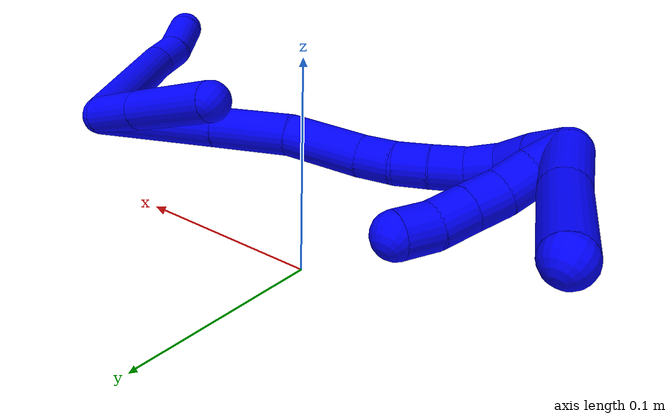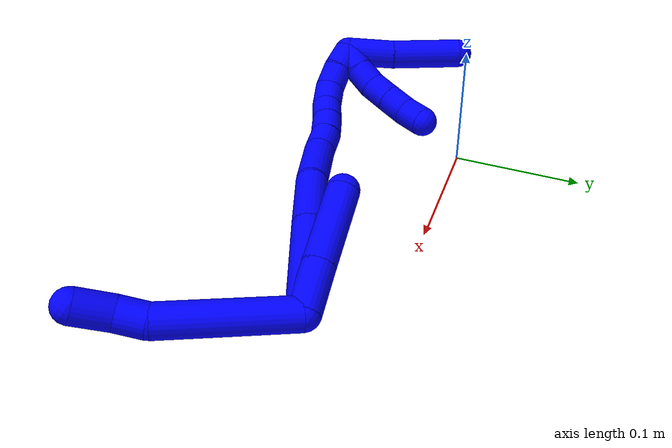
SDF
<sdf version="1.7">
 <world name="default">
  <model name="1">
   <static>0</static>
   <link name="1">
    <collision name="collision-cylinder-e_1_2_8">
     <pose>0.022388 -0.01796 0.040453 0.417834 0.468298 0.101053</pose>
     <geometry><cylinder><radius>0.0125</radius><length>0.099202</length></cylinder></geometry>
     <surface>
      <friction><ode><mu>1.16</mu><mu2>1.16</mu2><slip1>0</slip1><slip2>0</slip2></ode></friction>
      <contact><ode><kp>1e+06</kp><kd>1</kd><max_vel>0</max_vel><min_depth>0.001</min_depth></ode></contact>
     </surface>
    </collision>
    <visual name="visual-cylinder-e_1_2_8">
     <pose>0.022388 -0.01796 0.040453 0.417834 0.468298 0.101053</pose>
     <geometry><cylinder><radius>0.0125</radius><length>0.099202</length></cylinder></geometry>
     <material><ambient>0 0 1 1</ambient></material>
    </visual>
    <collision name="collision-cylinder-e_2_8_9">
     <pose>0.046967 -0.039414 0.091392 0.321621 0.195643 0.031834</pose>
     <geometry><cylinder><radius>0.0125</radius><length>0.022534</length></cylinder></geometry>
     <surface>
      <friction><ode><mu>1.16</mu><mu2>1.16</mu2><slip1>0</slip1><slip2>0</slip2></ode></friction>
      <contact><ode><kp>1e+06</kp><kd>1</kd><max_vel>0</max_vel><min_depth>0.001</min_depth></ode></contact>
     </surface>
    </collision>
    <visual name="visual-cylinder-e_2_8_9">
     <pose>0.046967 -0.039414 0.091392 0.321621 0.195643 0.031834</pose>
     <geometry><cylinder><radius>0.0125</radius><length>0.022534</length></cylinder></geometry>
     <material><ambient>0 0 1 1</ambient></material>
    </visual>
    <collision name="collision-cylinder-e_3_9_6">
     <pose>0.054947 -0.043831 0.114735 0.071644 0.422122 0.015356</pose>
     <geometry><cylinder><radius>0.0125</radius><length>0.028264</length></cylinder></geometry>
     <surface>
      <friction><ode><mu>1.16</mu><mu2>1.16</mu2><slip1>0</slip1><slip2>0</slip2></ode></friction>
      <contact><ode><kp>1e+06</kp><kd>1</kd><max_vel>0</max_vel><min_depth>0.001</min_depth></ode></contact>
     </surface>
    </collision>
    <visual name="visual-cylinder-e_3_9_6">
     <pose>0.054947 -0.043831 0.114735 0.071644 0.422122 0.015356</pose>
     <geometry><cylinder><radius>0.0125</radius><length>0.028264</length></cylinder></geometry>
     <material><ambient>0 0 1 1</ambient></material>
    </visual>
    <collision name="collision-cylinder-e_1_2_10">
     <pose>-0.017951 0.003505 0.003564 -0.777013 -1.29923 0.602875</pose>
     <geometry><cylinder><radius>0.0125</radius><length>0.037269</length></cylinder></geometry>
     <surface>
      <friction><ode><mu>1.16</mu><mu2>1.16</mu2><slip1>0</slip1><slip2>0</slip2></ode></friction>
      <contact><ode><kp>1e+06</kp><kd>1</kd><max_vel>0</max_vel><min_depth>0.001</min_depth></ode></contact>
     </surface>
    </collision>
    <visual name="visual-cylinder-e_1_2_10">
     <pose>-0.017951 0.003505 0.003564 -0.777013 -1.29923 0.602875</pose>
     <geometry><cylinder><radius>0.0125</radius><length>0.037269</length></cylinder></geometry>
     <material><ambient>0 0 1 1</ambient></material>
    </visual>
    <collision name="collision-cylinder-e_2_10_5">
     <pose>-0.06616 0.013038 0.012782 -0.817412 -1.30413 0.638671</pose>
     <geometry><cylinder><radius>0.0125</radius><length>0.062731</length></cylinder></geometry>
     <surface>
      <friction><ode><mu>1.16</mu><mu2>1.16</mu2><slip1>0</slip1><slip2>0</slip2></ode></friction>
      <contact><ode><kp>1e+06</kp><kd>1</kd><max_vel>0</max_vel><min_depth>0.001</min_depth></ode></contact>
     </surface>
    </collision>
    <visual name="visual-cylinder-e_2_10_5">
     <pose>-0.06616 0.013038 0.012782 -0.817412 -1.30413 0.638671</pose>
     <geometry><cylinder><radius>0.0125</radius><length>0.062731</length></cylinder></geometry>
     <material><ambient>0 0 1 1</ambient></material>
    </visual>
    <collision name="collision-cylinder-e_1_2_11">
     <pose>-0.03948 -0.006761 0.012006 0.512902 -1.235 -0.368218</pose>
     <geometry><cylinder><radius>0.0125</radius><length>0.083632</length></cylinder></geometry>
     <surface>
      <friction><ode><mu>1.16</mu><mu2>1.16</mu2><slip1>0</slip1><slip2>0</slip2></ode></friction>
      <contact><ode><kp>1e+06</kp><kd>1</kd><max_vel>0</max_vel><min_depth>0.001</min_depth></ode></contact>
     </surface>
    </collision>
    <visual name="visual-cylinder-e_1_2_11">
     <pose>-0.03948 -0.006761 0.012006 0.512902 -1.235 -0.368218</pose>
     <geometry><cylinder><radius>0.0125</radius><length>0.083632</length></cylinder></geometry>
     <material><ambient>0 0 1 1</ambient></material>
    </visual>
    <collision name="collision-cylinder-e_2_11_12">
     <pose>-0.102085 -0.017221 0.030748 0.502108 -1.24996 -0.365917</pose>
     <geometry><cylinder><radius>0.0125</radius><length>0.048736</length></cylinder></geometry>
     <surface>
      <friction><ode><mu>1.16</mu><mu2>1.16</mu2><slip1>0</slip1><slip2>0</slip2></ode></friction>
      <contact><ode><kp>1e+06</kp><kd>1</kd><max_vel>0</max_vel><min_depth>0.001</min_depth></ode></contact>
     </surface>
    </collision>
    <visual name="visual-cylinder-e_2_11_12">
     <pose>-0.102085 -0.017221 0.030748 0.502108 -1.24996 -0.365917</pose>
     <geometry><cylinder><radius>0.0125</radius><length>0.048736</length></cylinder></geometry>
     <material><ambient>0 0 1 1</ambient></material>
    </visual>
    <collision name="collision-cylinder-e_3_12_13">
     <pose>-0.147423 -0.026516 0.040568 1.06713 -1.29071 -0.836963</pose>
     <geometry><cylinder><radius>0.0125</radius><length>0.046228</length></cylinder></geometry>
     <surface>
      <friction><ode><mu>1.16</mu><mu2>1.16</mu2><slip1>0</slip1><slip2>0</slip2></ode></friction>
      <contact><ode><kp>1e+06</kp><kd>1</kd><max_vel>0</max_vel><min_depth>0.001</min_depth></ode></contact>
     </surface>
    </collision>
    <visual name="visual-cylinder-e_3_12_13">
     <pose>-0.147423 -0.026516 0.040568 1.06713 -1.29071 -0.836963</pose>
     <geometry><cylinder><radius>0.0125</radius><length>0.046228</length></cylinder></geometry>
     <material><ambient>0 0 1 1</ambient></material>
    </visual>
    <collision name="collision-cylinder-e_4_13_14">
     <pose>-0.18026 -0.032802 0.044715 0.575665 -1.4521 -0.514061</pose>
     <geometry><cylinder><radius>0.0125</radius><length>0.021398</length></cylinder></geometry>
     <surface>
      <friction><ode><mu>1.16</mu><mu2>1.16</mu2><slip1>0</slip1><slip2>0</slip2></ode></friction>
      <contact><ode><kp>1e+06</kp><kd>1</kd><max_vel>0</max_vel><min_depth>0.001</min_depth></ode></contact>
     </surface>
    </collision>
    <visual name="visual-cylinder-e_4_13_14">
     <pose>-0.18026 -0.032802 0.044715 0.575665 -1.4521 -0.514061</pose>
     <geometry><cylinder><radius>0.0125</radius><length>0.021398</length></cylinder></geometry>
     <material><ambient>0 0 1 1</ambient></material>
    </visual>
    <collision name="collision-cylinder-e_5_14_15">
     <pose>-0.200438 -0.034656 0.0485 0.404217 -1.27029 -0.299775</pose>
     <geometry><cylinder><radius>0.0125</radius><length>0.020003</length></cylinder></geometry>
     <surface>
      <friction><ode><mu>1.16</mu><mu2>1.16</mu2><slip1>0</slip1><slip2>0</slip2></ode></friction>
      <contact><ode><kp>1e+06</kp><kd>1</kd><max_vel>0</max_vel><min_depth>0.001</min_depth></ode></contact>
     </surface>
    </collision>
    <visual name="visual-cylinder-e_5_14_15">
     <pose>-0.200438 -0.034656 0.0485 0.404217 -1.27029 -0.299775</pose>
     <geometry><cylinder><radius>0.0125</radius><length>0.020003</length></cylinder></geometry>
     <material><ambient>0 0 1 1</ambient></material>
    </visual>
    <collision name="collision-cylinder-e_6_15_16">
     <pose>-0.219288 -0.03739 0.054556 0.439902 -1.19336 -0.301426</pose>
     <geometry><cylinder><radius>0.0125</radius><length>0.020002</length></cylinder></geometry>
     <surface>
      <friction><ode><mu>1.16</mu><mu2>1.16</mu2><slip1>0</slip1><slip2>0</slip2></ode></friction>
      <contact><ode><kp>1e+06</kp><kd>1</kd><max_vel>0</max_vel><min_depth>0.001</min_depth></ode></contact>
     </surface>
    </collision>
    <visual name="visual-cylinder-e_6_15_16">
     <pose>-0.219288 -0.03739 0.054556 0.439902 -1.19336 -0.301426</pose>
     <geometry><cylinder><radius>0.0125</radius><length>0.020002</length></cylinder></geometry>
     <material><ambient>0 0 1 1</ambient></material>
    </visual>
    <collision name="collision-cylinder-e_7_16_17">
     <pose>-0.237984 -0.03756 0.061006 -0.422279 -1.22228 0.298106</pose>
     <geometry><cylinder><radius>0.0125</radius><length>0.02</length></cylinder></geometry>
     <surface>
      <friction><ode><mu>1.16</mu><mu2>1.16</mu2><slip1>0</slip1><slip2>0</slip2></ode></friction>
      <contact><ode><kp>1e+06</kp><kd>1</kd><max_vel>0</max_vel><min_depth>0.001</min_depth></ode></contact>
     </surface>
    </collision>
    <visual name="visual-cylinder-e_7_16_17">
     <pose>-0.237984 -0.03756 0.061006 -0.422279 -1.22228 0.298106</pose>
     <geometry><cylinder><radius>0.0125</radius><length>0.02</length></cylinder></geometry>
     <material><ambient>0 0 1 1</ambient></material>
    </visual>
    <collision name="collision-cylinder-e_8_17_18">
     <pose>-0.256085 -0.0316 0.065988 -1.18233 -1.05557 0.745968</pose>
     <geometry><cylinder><radius>0.0125</radius><length>0.020001</length></cylinder></geometry>
     <surface>
      <friction><ode><mu>1.16</mu><mu2>1.16</mu2><slip1>0</slip1><slip2>0</slip2></ode></friction>
      <contact><ode><kp>1e+06</kp><kd>1</kd><max_vel>0</max_vel><min_depth>0.001</min_depth></ode></contact>
     </surface>
    </collision>
    <visual name="visual-cylinder-e_8_17_18">
     <pose>-0.256085 -0.0316 0.065988 -1.18233 -1.05557 0.745968</pose>
     <geometry><cylinder><radius>0.0125</radius><length>0.020001</length></cylinder></geometry>
     <material><ambient>0 0 1 1</ambient></material>
    </visual>
    <collision name="collision-cylinder-e_9_18_1">
     <pose>-0.273803 -0.022727 0.068186 -1.49399 -1.12355 1.05543</pose>
     <geometry><cylinder><radius>0.0125</radius><length>0.02</length></cylinder></geometry>
     <surface>
      <friction><ode><mu>1.16</mu><mu2>1.16</mu2><slip1>0</slip1><slip2>0</slip2></ode></friction>
      <contact><ode><kp>1e+06</kp><kd>1</kd><max_vel>0</max_vel><min_depth>0.001</min_depth></ode></contact>
     </surface>
    </collision>
    <visual name="visual-cylinder-e_9_18_1">
     <pose>-0.273803 -0.022727 0.068186 -1.49399 -1.12355 1.05543</pose>
     <geometry><cylinder><radius>0.0125</radius><length>0.02</length></cylinder></geometry>
     <material><ambient>0 0 1 1</ambient></material>
    </visual>
    <collision name="collision-cylinder-e_1_1_19">
     <pose>-0.2771 -0.018805 0.060324 3.09408 0.608884 2.99064</pose>
     <geometry><cylinder><radius>0.0125</radius><length>0.02</length></cylinder></geometry>
     <surface>
      <friction><ode><mu>1.16</mu><mu2>1.16</mu2><slip1>0</slip1><slip2>0</slip2></ode></friction>
      <contact><ode><kp>1e+06</kp><kd>1</kd><max_vel>0</max_vel><min_depth>0.001</min_depth></ode></contact>
     </surface>
    </collision>
    <visual name="visual-cylinder-e_1_1_19">
     <pose>-0.2771 -0.018805 0.060324 3.09408 0.608884 2.99064</pose>
     <geometry><cylinder><radius>0.0125</radius><length>0.02</length></cylinder></geometry>
     <material><ambient>0 0 1 1</ambient></material>
    </visual>
    <collision name="collision-cylinder-e_2_19_20">
     <pose>-0.266972 -0.018745 0.043166 -3.09148 0.456536 -2.92669</pose>
     <geometry><cylinder><radius>0.0125</radius><length>0.02</length></cylinder></geometry>
     <surface>
      <friction><ode><mu>1.16</mu><mu2>1.16</mu2><slip1>0</slip1><slip2>0</slip2></ode></friction>
      <contact><ode><kp>1e+06</kp><kd>1</kd><max_vel>0</max_vel><min_depth>0.001</min_depth></ode></contact>
     </surface>
    </collision>
    <visual name="visual-cylinder-e_2_19_20">
     <pose>-0.266972 -0.018745 0.043166 -3.09148 0.456536 -2.92669</pose>
     <geometry><cylinder><radius>0.0125</radius><length>0.02</length></cylinder></geometry>
     <material><ambient>0 0 1 1</ambient></material>
    </visual>
    <collision name="collision-cylinder-e_3_20_21">
     <pose>-0.258415 -0.015736 0.02547 -2.85643 0.42789 -1.97384</pose>
     <geometry><cylinder><radius>0.0125</radius><length>0.02</length></cylinder></geometry>
     <surface>
      <friction><ode><mu>1.16</mu><mu2>1.16</mu2><slip1>0</slip1><slip2>0</slip2></ode></friction>
      <contact><ode><kp>1e+06</kp><kd>1</kd><max_vel>0</max_vel><min_depth>0.001</min_depth></ode></contact>
     </surface>
    </collision>
    <visual name="visual-cylinder-e_3_20_21">
     <pose>-0.258415 -0.015736 0.02547 -2.85643 0.42789 -1.97384</pose>
     <geometry><cylinder><radius>0.0125</radius><length>0.02</length></cylinder></geometry>
     <material><ambient>0 0 1 1</ambient></material>
    </visual>
    <collision name="collision-cylinder-e_4_21_22">
     <pose>-0.250323 -0.010635 0.007908 -2.86139 0.405215 -1.93837</pose>
     <geometry><cylinder><radius>0.0125</radius><length>0.02</length></cylinder></geometry>
     <surface>
      <friction><ode><mu>1.16</mu><mu2>1.16</mu2><slip1>0</slip1><slip2>0</slip2></ode></friction>
      <contact><ode><kp>1e+06</kp><kd>1</kd><max_vel>0</max_vel><min_depth>0.001</min_depth></ode></contact>
     </surface>
    </collision>
    <visual name="visual-cylinder-e_4_21_22">
     <pose>-0.250323 -0.010635 0.007908 -2.86139 0.405215 -1.93837</pose>
     <geometry><cylinder><radius>0.0125</radius><length>0.02</length></cylinder></geometry>
     <material><ambient>0 0 1 1</ambient></material>
    </visual>
    <collision name="collision-cylinder-e_5_22_4">
     <pose>-0.241898 -0.003823 -0.008778 -2.64359 0.464793 -1.49911</pose>
     <geometry><cylinder><radius>0.0125</radius><length>0.02</length></cylinder></geometry>
     <surface>
      <friction><ode><mu>1.16</mu><mu2>1.16</mu2><slip1>0</slip1><slip2>0</slip2></ode></friction>
      <contact><ode><kp>1e+06</kp><kd>1</kd><max_vel>0</max_vel><min_depth>0.001</min_depth></ode></contact>
     </surface>
    </collision>
    <visual name="visual-cylinder-e_5_22_4">
     <pose>-0.241898 -0.003823 -0.008778 -2.64359 0.464793 -1.49911</pose>
     <geometry><cylinder><radius>0.0125</radius><length>0.02</length></cylinder></geometry>
     <material><ambient>0 0 1 1</ambient></material>
    </visual>
    <collision name="collision-cylinder-e_1_1_23">
     <pose>-0.289994 -0.01092 0.05129 -2.73121 -0.364748 1.45021</pose>
     <geometry><cylinder><radius>0.0125</radius><length>0.040221</length></cylinder></geometry>
     <surface>
      <friction><ode><mu>1.16</mu><mu2>1.16</mu2><slip1>0</slip1><slip2>0</slip2></ode></friction>
      <contact><ode><kp>1e+06</kp><kd>1</kd><max_vel>0</max_vel><min_depth>0.001</min_depth></ode></contact>
     </surface>
    </collision>
    <visual name="visual-cylinder-e_1_1_23">
     <pose>-0.289994 -0.01092 0.05129 -2.73121 -0.364748 1.45021</pose>
     <geometry><cylinder><radius>0.0125</radius><length>0.040221</length></cylinder></geometry>
     <material><ambient>0 0 1 1</ambient></material>
    </visual>
    <collision name="collision-cylinder-e_2_23_3">
     <pose>-0.309534 0.009059 0.009884 -2.66498 -0.426576 1.45627</pose>
     <geometry><cylinder><radius>0.0125</radius><length>0.059779</length></cylinder></geometry>
     <surface>
      <friction><ode><mu>1.16</mu><mu2>1.16</mu2><slip1>0</slip1><slip2>0</slip2></ode></friction>
      <contact><ode><kp>1e+06</kp><kd>1</kd><max_vel>0</max_vel><min_depth>0.001</min_depth></ode></contact>
     </surface>
    </collision>
    <visual name="visual-cylinder-e_2_23_3">
     <pose>-0.309534 0.009059 0.009884 -2.66498 -0.426576 1.45627</pose>
     <geometry><cylinder><radius>0.0125</radius><length>0.059779</length></cylinder></geometry>
     <material><ambient>0 0 1 1</ambient></material>
    </visual>
    <collision name="collision-sphere-3">
     <pose>-0.321901 0.021543 -0.014294 0 -0 0</pose>
     <geometry><sphere><radius>0.0125</radius></sphere></geometry>
     <surface>
      <friction><ode><mu>1.16</mu><mu2>1.16</mu2><slip1>0</slip1><slip2>0</slip2></ode></friction>
      <contact><ode><kp>1e+06</kp><kd>1</kd><max_vel>0</max_vel><min_depth>0.001</min_depth></ode></contact>
     </surface>
    </collision>
    <visual name="visual-sphere-3">
     <pose>-0.321901 0.021543 -0.014294 0 -0 0</pose>
     <geometry><sphere><radius>0.0125</radius></sphere></geometry>
     <material><ambient>0 0 1 1</ambient></material>
    </visual>
    <collision name="collision-sphere-23">
     <pose>-0.297167 -0.003424 0.034063 0 -0 0</pose>
     <geometry><sphere><radius>0.0125</radius></sphere></geometry>
     <surface>
      <friction><ode><mu>1.16</mu><mu2>1.16</mu2><slip1>0</slip1><slip2>0</slip2></ode></friction>
      <contact><ode><kp>1e+06</kp><kd>1</kd><max_vel>0</max_vel><min_depth>0.001</min_depth></ode></contact>
     </surface>
    </collision>
    <visual name="visual-sphere-23">
     <pose>-0.297167 -0.003424 0.034063 0 -0 0</pose>
     <geometry><sphere><radius>0.0125</radius></sphere></geometry>
     <material><ambient>0 0 1 1</ambient></material>
    </visual>
    <collision name="collision-sphere-4">
     <pose>-0.237416 0.000447 -0.016631 0 -0 0</pose>
     <geometry><sphere><radius>0.0125</radius></sphere></geometry>
     <surface>
      <friction><ode><mu>1.16</mu><mu2>1.16</mu2><slip1>0</slip1><slip2>0</slip2></ode></friction>
      <contact><ode><kp>1e+06</kp><kd>1</kd><max_vel>0</max_vel><min_depth>0.001</min_depth></ode></contact>
     </surface>
    </collision>
    <visual name="visual-sphere-4">
     <pose>-0.237416 0.000447 -0.016631 0 -0 0</pose>
     <geometry><sphere><radius>0.0125</radius></sphere></geometry>
     <material><ambient>0 0 1 1</ambient></material>
    </visual>
    <collision name="collision-sphere-22">
     <pose>-0.246381 -0.008093 -0.000924 0 -0 0</pose>
     <geometry><sphere><radius>0.0125</radius></sphere></geometry>
     <surface>
      <friction><ode><mu>1.16</mu><mu2>1.16</mu2><slip1>0</slip1><slip2>0</slip2></ode></friction>
      <contact><ode><kp>1e+06</kp><kd>1</kd><max_vel>0</max_vel><min_depth>0.001</min_depth></ode></contact>
     </surface>
    </collision>
    <visual name="visual-sphere-22">
     <pose>-0.246381 -0.008093 -0.000924 0 -0 0</pose>
     <geometry><sphere><radius>0.0125</radius></sphere></geometry>
     <material><ambient>0 0 1 1</ambient></material>
    </visual>
    <collision name="collision-sphere-21">
     <pose>-0.254265 -0.013176 0.016739 0 -0 0</pose>
     <geometry><sphere><radius>0.0125</radius></sphere></geometry>
     <surface>
      <friction><ode><mu>1.16</mu><mu2>1.16</mu2><slip1>0</slip1><slip2>0</slip2></ode></friction>
      <contact><ode><kp>1e+06</kp><kd>1</kd><max_vel>0</max_vel><min_depth>0.001</min_depth></ode></contact>
     </surface>
    </collision>
    <visual name="visual-sphere-21">
     <pose>-0.254265 -0.013176 0.016739 0 -0 0</pose>
     <geometry><sphere><radius>0.0125</radius></sphere></geometry>
     <material><ambient>0 0 1 1</ambient></material>
    </visual>
    <collision name="collision-sphere-20">
     <pose>-0.262564 -0.018295 0.034201 0 -0 0</pose>
     <geometry><sphere><radius>0.0125</radius></sphere></geometry>
     <surface>
      <friction><ode><mu>1.16</mu><mu2>1.16</mu2><slip1>0</slip1><slip2>0</slip2></ode></friction>
      <contact><ode><kp>1e+06</kp><kd>1</kd><max_vel>0</max_vel><min_depth>0.001</min_depth></ode></contact>
     </surface>
    </collision>
    <visual name="visual-sphere-20">
     <pose>-0.262564 -0.018295 0.034201 0 -0 0</pose>
     <geometry><sphere><radius>0.0125</radius></sphere></geometry>
     <material><ambient>0 0 1 1</ambient></material>
    </visual>
    <collision name="collision-sphere-5">
     <pose>-0.096417 0.019067 0.018437 0 -0 0</pose>
     <geometry><sphere><radius>0.0125</radius></sphere></geometry>
     <surface>
      <friction><ode><mu>1.16</mu><mu2>1.16</mu2><slip1>0</slip1><slip2>0</slip2></ode></friction>
      <contact><ode><kp>1e+06</kp><kd>1</kd><max_vel>0</max_vel><min_depth>0.001</min_depth></ode></contact>
     </surface>
    </collision>
    <visual name="visual-sphere-5">
     <pose>-0.096417 0.019067 0.018437 0 -0 0</pose>
     <geometry><sphere><radius>0.0125</radius></sphere></geometry>
     <material><ambient>0 0 1 1</ambient></material>
    </visual>
    <collision name="collision-sphere-10">
     <pose>-0.035903 0.007009 0.007128 0 -0 0</pose>
     <geometry><sphere><radius>0.0125</radius></sphere></geometry>
     <surface>
      <friction><ode><mu>1.16</mu><mu2>1.16</mu2><slip1>0</slip1><slip2>0</slip2></ode></friction>
      <contact><ode><kp>1e+06</kp><kd>1</kd><max_vel>0</max_vel><min_depth>0.001</min_depth></ode></contact>
     </surface>
    </collision>
    <visual name="visual-sphere-10">
     <pose>-0.035903 0.007009 0.007128 0 -0 0</pose>
     <geometry><sphere><radius>0.0125</radius></sphere></geometry>
     <material><ambient>0 0 1 1</ambient></material>
    </visual>
    <collision name="collision-sphere-6">
     <pose>0.060737 -0.044753 0.127594 0 -0 0</pose>
     <geometry><sphere><radius>0.0125</radius></sphere></geometry>
     <surface>
      <friction><ode><mu>1.16</mu><mu2>1.16</mu2><slip1>0</slip1><slip2>0</slip2></ode></friction>
      <contact><ode><kp>1e+06</kp><kd>1</kd><max_vel>0</max_vel><min_depth>0.001</min_depth></ode></contact>
     </surface>
    </collision>
    <visual name="visual-sphere-6">
     <pose>0.060737 -0.044753 0.127594 0 -0 0</pose>
     <geometry><sphere><radius>0.0125</radius></sphere></geometry>
     <material><ambient>0 0 1 1</ambient></material>
    </visual>
    <collision name="collision-sphere-9">
     <pose>0.049157 -0.042908 0.101877 0 -0 0</pose>
     <geometry><sphere><radius>0.0125</radius></sphere></geometry>
     <surface>
      <friction><ode><mu>1.16</mu><mu2>1.16</mu2><slip1>0</slip1><slip2>0</slip2></ode></friction>
      <contact><ode><kp>1e+06</kp><kd>1</kd><max_vel>0</max_vel><min_depth>0.001</min_depth></ode></contact>
     </surface>
    </collision>
    <visual name="visual-sphere-9">
     <pose>0.049157 -0.042908 0.101877 0 -0 0</pose>
     <geometry><sphere><radius>0.0125</radius></sphere></geometry>
     <material><ambient>0 0 1 1</ambient></material>
    </visual>
    <collision name="collision-sphere-2">
     <geometry><sphere><radius>0.0125</radius></sphere></geometry>
     <surface>
      <friction><ode><mu>1.16</mu><mu2>1.16</mu2><slip1>0</slip1><slip2>0</slip2></ode></friction>
      <contact><ode><kp>1e+06</kp><kd>1</kd><max_vel>0</max_vel><min_depth>0.001</min_depth></ode></contact>
     </surface>
    </collision>
    <visual name="visual-sphere-2">
     <geometry><sphere><radius>0.0125</radius></sphere></geometry>
     <material><ambient>0 0 1 1</ambient></material>
    </visual>
    <collision name="collision-sphere-19">
     <pose>-0.271381 -0.019194 0.05213 0 -0 0</pose>
     <geometry><sphere><radius>0.0125</radius></sphere></geometry>
     <surface>
      <friction><ode><mu>1.16</mu><mu2>1.16</mu2><slip1>0</slip1><slip2>0</slip2></ode></friction>
      <contact><ode><kp>1e+06</kp><kd>1</kd><max_vel>0</max_vel><min_depth>0.001</min_depth></ode></contact>
     </surface>
    </collision>
    <visual name="visual-sphere-19">
     <pose>-0.271381 -0.019194 0.05213 0 -0 0</pose>
     <geometry><sphere><radius>0.0125</radius></sphere></geometry>
     <material><ambient>0 0 1 1</ambient></material>
    </visual>
    <collision name="collision-sphere-8">
     <pose>0.044777 -0.035921 0.080906 0 -0 0</pose>
     <geometry><sphere><radius>0.0125</radius></sphere></geometry>
     <surface>
      <friction><ode><mu>1.16</mu><mu2>1.16</mu2><slip1>0</slip1><slip2>0</slip2></ode></friction>
      <contact><ode><kp>1e+06</kp><kd>1</kd><max_vel>0</max_vel><min_depth>0.001</min_depth></ode></contact>
     </surface>
    </collision>
    <visual name="visual-sphere-8">
     <pose>0.044777 -0.035921 0.080906 0 -0 0</pose>
     <geometry><sphere><radius>0.0125</radius></sphere></geometry>
     <material><ambient>0 0 1 1</ambient></material>
    </visual>
    <collision name="collision-sphere-11">
     <pose>-0.078961 -0.013523 0.024012 0 -0 0</pose>
     <geometry><sphere><radius>0.0125</radius></sphere></geometry>
     <surface>
      <friction><ode><mu>1.16</mu><mu2>1.16</mu2><slip1>0</slip1><slip2>0</slip2></ode></friction>
      <contact><ode><kp>1e+06</kp><kd>1</kd><max_vel>0</max_vel><min_depth>0.001</min_depth></ode></contact>
     </surface>
    </collision>
    <visual name="visual-sphere-11">
     <pose>-0.078961 -0.013523 0.024012 0 -0 0</pose>
     <geometry><sphere><radius>0.0125</radius></sphere></geometry>
     <material><ambient>0 0 1 1</ambient></material>
    </visual>
    <collision name="collision-sphere-12">
     <pose>-0.12521 -0.02092 0.037484 0 -0 0</pose>
     <geometry><sphere><radius>0.0125</radius></sphere></geometry>
     <surface>
      <friction><ode><mu>1.16</mu><mu2>1.16</mu2><slip1>0</slip1><slip2>0</slip2></ode></friction>
      <contact><ode><kp>1e+06</kp><kd>1</kd><max_vel>0</max_vel><min_depth>0.001</min_depth></ode></contact>
     </surface>
    </collision>
    <visual name="visual-sphere-12">
     <pose>-0.12521 -0.02092 0.037484 0 -0 0</pose>
     <geometry><sphere><radius>0.0125</radius></sphere></geometry>
     <material><ambient>0 0 1 1</ambient></material>
    </visual>
    <collision name="collision-sphere-13">
     <pose>-0.169636 -0.032112 0.043652 0 -0 0</pose>
     <geometry><sphere><radius>0.0125</radius></sphere></geometry>
     <surface>
      <friction><ode><mu>1.16</mu><mu2>1.16</mu2><slip1>0</slip1><slip2>0</slip2></ode></friction>
      <contact><ode><kp>1e+06</kp><kd>1</kd><max_vel>0</max_vel><min_depth>0.001</min_depth></ode></contact>
     </surface>
    </collision>
    <visual name="visual-sphere-13">
     <pose>-0.169636 -0.032112 0.043652 0 -0 0</pose>
     <geometry><sphere><radius>0.0125</radius></sphere></geometry>
     <material><ambient>0 0 1 1</ambient></material>
    </visual>
    <collision name="collision-sphere-14">
     <pose>-0.190884 -0.033492 0.045778 0 -0 0</pose>
     <geometry><sphere><radius>0.0125</radius></sphere></geometry>
     <surface>
      <friction><ode><mu>1.16</mu><mu2>1.16</mu2><slip1>0</slip1><slip2>0</slip2></ode></friction>
      <contact><ode><kp>1e+06</kp><kd>1</kd><max_vel>0</max_vel><min_depth>0.001</min_depth></ode></contact>
     </surface>
    </collision>
    <visual name="visual-sphere-14">
     <pose>-0.190884 -0.033492 0.045778 0 -0 0</pose>
     <geometry><sphere><radius>0.0125</radius></sphere></geometry>
     <material><ambient>0 0 1 1</ambient></material>
    </visual>
    <collision name="collision-sphere-15">
     <pose>-0.209991 -0.03582 0.051222 0 -0 0</pose>
     <geometry><sphere><radius>0.0125</radius></sphere></geometry>
     <surface>
      <friction><ode><mu>1.16</mu><mu2>1.16</mu2><slip1>0</slip1><slip2>0</slip2></ode></friction>
      <contact><ode><kp>1e+06</kp><kd>1</kd><max_vel>0</max_vel><min_depth>0.001</min_depth></ode></contact>
     </surface>
    </collision>
    <visual name="visual-sphere-15">
     <pose>-0.209991 -0.03582 0.051222 0 -0 0</pose>
     <geometry><sphere><radius>0.0125</radius></sphere></geometry>
     <material><ambient>0 0 1 1</ambient></material>
    </visual>
    <collision name="collision-sphere-16">
     <pose>-0.228585 -0.038959 0.057891 0 -0 0</pose>
     <geometry><sphere><radius>0.0125</radius></sphere></geometry>
     <surface>
      <friction><ode><mu>1.16</mu><mu2>1.16</mu2><slip1>0</slip1><slip2>0</slip2></ode></friction>
      <contact><ode><kp>1e+06</kp><kd>1</kd><max_vel>0</max_vel><min_depth>0.001</min_depth></ode></contact>
     </surface>
    </collision>
    <visual name="visual-sphere-16">
     <pose>-0.228585 -0.038959 0.057891 0 -0 0</pose>
     <geometry><sphere><radius>0.0125</radius></sphere></geometry>
     <material><ambient>0 0 1 1</ambient></material>
    </visual>
    <collision name="collision-sphere-17">
     <pose>-0.247383 -0.03616 0.064121 0 -0 0</pose>
     <geometry><sphere><radius>0.0125</radius></sphere></geometry>
     <surface>
      <friction><ode><mu>1.16</mu><mu2>1.16</mu2><slip1>0</slip1><slip2>0</slip2></ode></friction>
      <contact><ode><kp>1e+06</kp><kd>1</kd><max_vel>0</max_vel><min_depth>0.001</min_depth></ode></contact>
     </surface>
    </collision>
    <visual name="visual-sphere-17">
     <pose>-0.247383 -0.03616 0.064121 0 -0 0</pose>
     <geometry><sphere><radius>0.0125</radius></sphere></geometry>
     <material><ambient>0 0 1 1</ambient></material>
    </visual>
    <collision name="collision-sphere-18">
     <pose>-0.264787 -0.02704 0.067854 0 -0 0</pose>
     <geometry><sphere><radius>0.0125</radius></sphere></geometry>
     <surface>
      <friction><ode><mu>1.16</mu><mu2>1.16</mu2><slip1>0</slip1><slip2>0</slip2></ode></friction>
      <contact><ode><kp>1e+06</kp><kd>1</kd><max_vel>0</max_vel><min_depth>0.001</min_depth></ode></contact>
     </surface>
    </collision>
    <visual name="visual-sphere-18">
     <pose>-0.264787 -0.02704 0.067854 0 -0 0</pose>
     <geometry><sphere><radius>0.0125</radius></sphere></geometry>
     <material><ambient>0 0 1 1</ambient></material>
    </visual>
    <collision name="collision-sphere-1">
     <pose>-0.28282 -0.018415 0.068518 0 -0 0</pose>
     <geometry><sphere><radius>0.0125</radius></sphere></geometry>
     <surface>
      <friction><ode><mu>1.16</mu><mu2>1.16</mu2><slip1>0</slip1><slip2>0</slip2></ode></friction>
      <contact><ode><kp>1e+06</kp><kd>1</kd><max_vel>0</max_vel><min_depth>0.001</min_depth></ode></contact>
     </surface>
    </collision>
    <visual name="visual-sphere-1">
     <pose>-0.28282 -0.018415 0.068518 0 -0 0</pose>
     <geometry><sphere><radius>0.0125</radius></sphere></geometry>
     <material><ambient>0 0 1 1</ambient></material>
    </visual>
    <inertial>
     <pose>-0.131668 -0.014432 0.035687 0 -0 0</pose>
     <mass>0.75</mass>
     <inertia>
      <ixx>0.00011</ixx>
      <ixy>0</ixy>
      <ixz>0</ixz>
      <iyy>0.000224</iyy>
      <iyz>0</iyz>
      <izz>0.000102</izz>
     </inertia>
    </inertial>
   </link>
   <pose>0.212372 -0.051126 0.011815 1.04114 0.031836 0.005709</pose>
  </model>
 </world>
</sdf>
